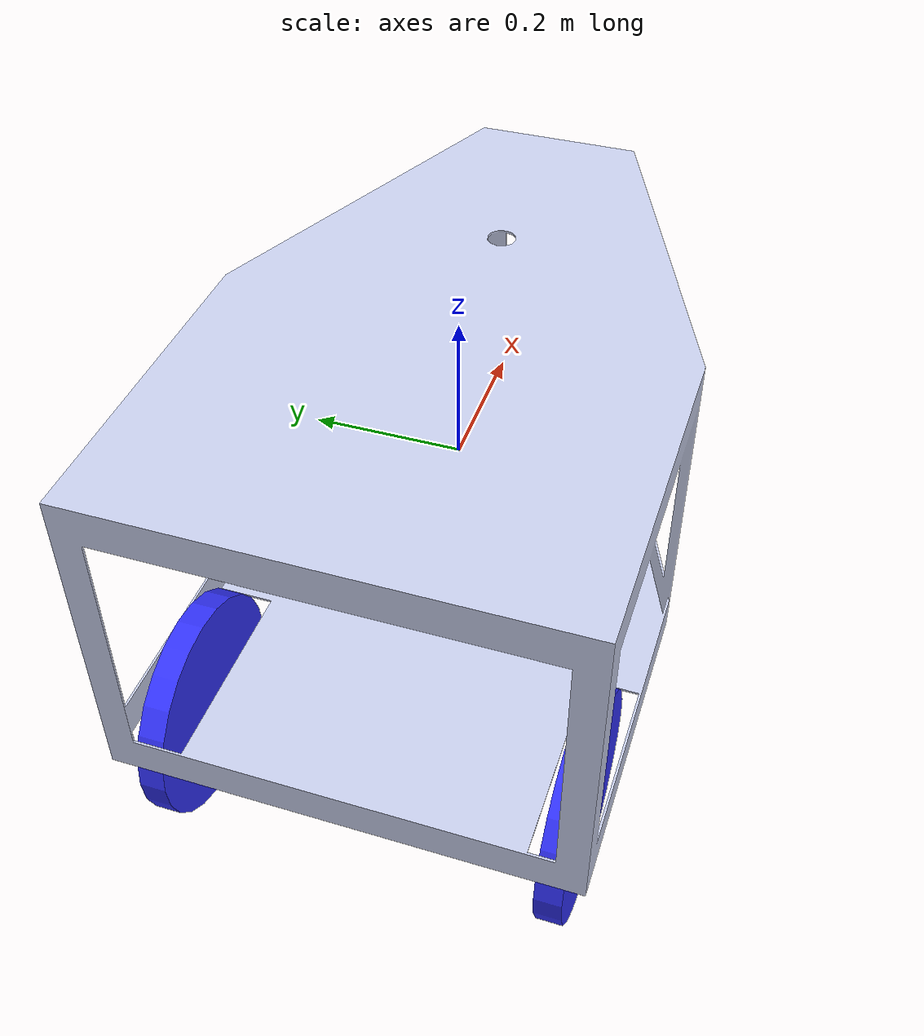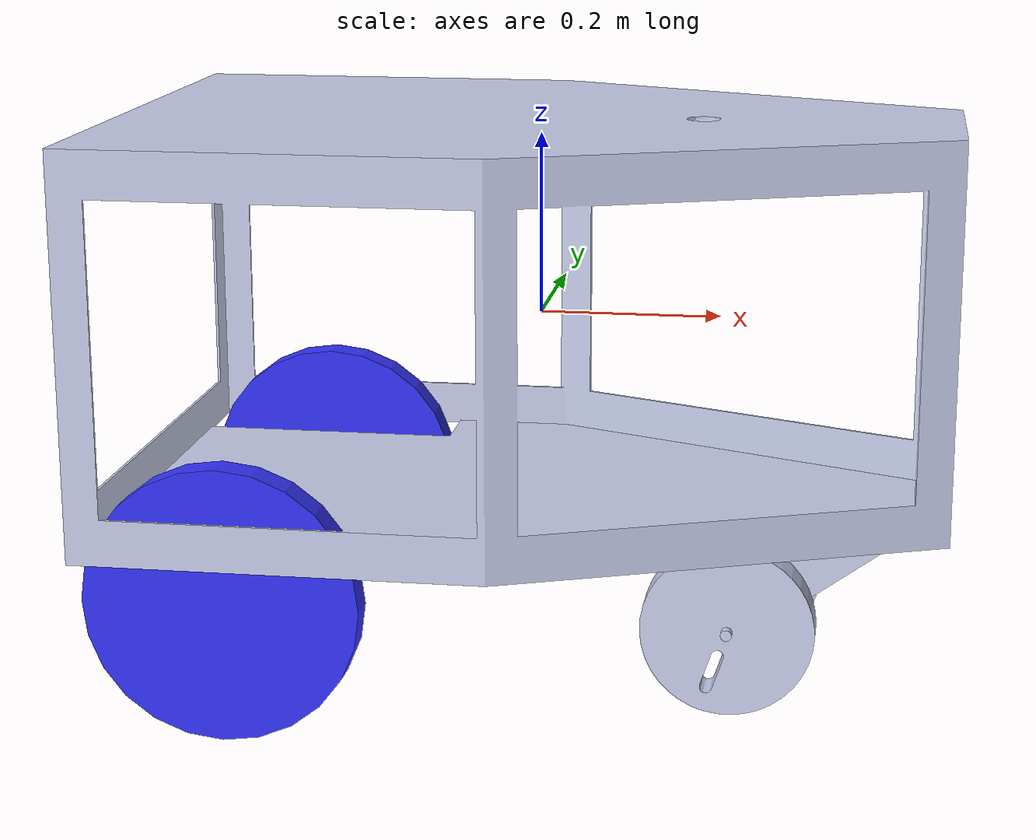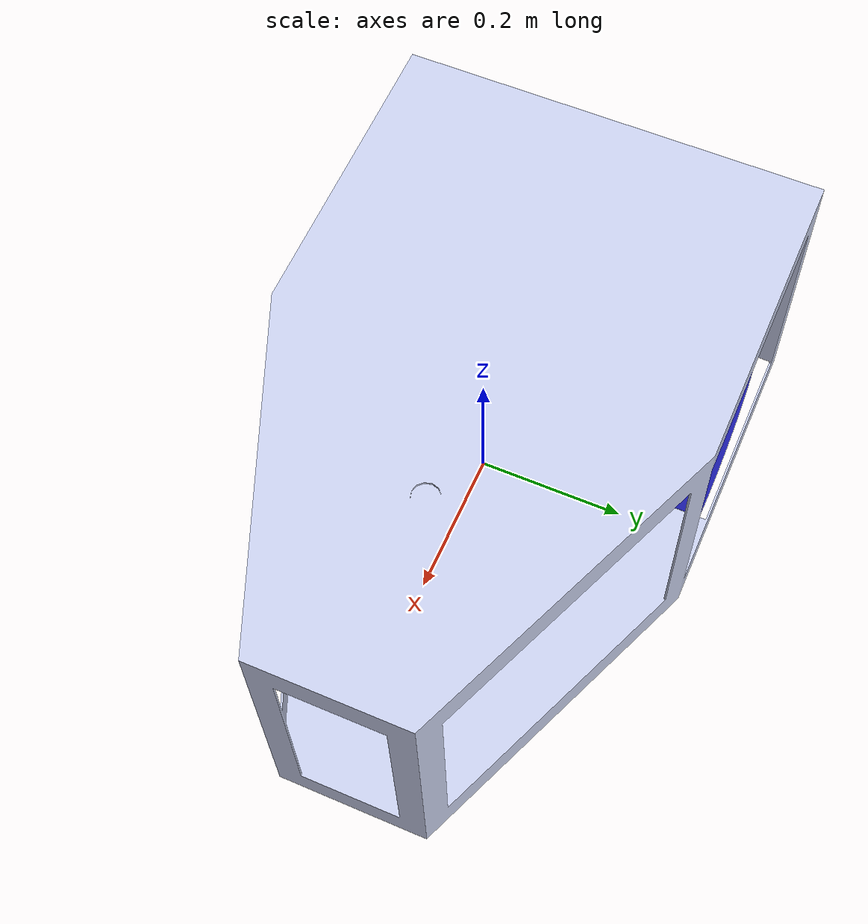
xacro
<?xml version="1.0" encoding="utf-8"?>
<robot xmlns:xacro="http://www.ros.org/wiki/xacro">

  <xacro:include filename="inertial_macros.xacro"/>

  <!-- PROPERTIES -->
  <xacro:property name="wheel_radius" value="0.15"/>
  <xacro:property name="wheel_thickness" value="0.035"/>
  <xacro:property name="wheel_mass" value="0.15"/>
  <xacro:property name="wheel_offset_x" value="-0.30175"/>
  <xacro:property name="wheel_offset_y" value="0.26"/>
  <xacro:property name="wheel_offset_z" value="-0.26683"/>

  <!-- MATERIALS -->
  <material name="white">
      <color rgba="1 1 1 1" />
  </material>

  <material name="orange">
      <color rgba="1 0.3 0.1 1"/>
  </material>

  <material name="blue">
      <color rgba="0.2 0.2 1 1"/>
  </material>

  <material name="black">
      <color rgba="0 0 0 1"/>
  </material>

  <material name="red">
      <color rgba="1 0 0 1"/>
  </material>

  <!-- BASE LINK -->
  <link name="base_link"/>

  <!-- BASE_FOOTPRINT LINK -->
  <joint name="base_footprint_joint" type="fixed">
      <parent link="base_link"/>
      <child link="base_footprint"/>
      <origin xyz="0 0 -0.40" rpy="0 0 0"/>
  </joint>

  <link name="base_footprint"/>

  <!-- CHASSIS -->
  <joint name="dokalman_chassis_joint" type="fixed">
    <parent link="base_link"/>
    <child link="ChassisLink"/>
    <origin xyz="0 0 0" rpy="0 0 0"/>
  </joint>
  <link name="ChassisLink">
    <xacro:inertial_box mass="1.5" x="1.2192" y="0.6858" z="0.8128">
        <origin xyz="0 0 0.042916" rpy="0 0 -1.5708"/>
    </xacro:inertial_box>
    <visual>
      <origin
        xyz="0 0 0"
        rpy="0 0 -1.5708" />

      <geometry>
        <mesh
          filename="file://$(find articubot_one)/meshes/base_link.STL" />
      </geometry>
      <material
        name="">
        <color
          rgba="0.79216 0.81961 0.93333 1" />
      </material>
    </visual>
    <collision>
      <origin
        xyz="0 0 0"
        rpy="0 0 -1.5708" />
      <geometry>
        <mesh
          filename="file://$(find articubot_one)/meshes/base_link.STL" />
      </geometry>
    </collision>
  </link>

  <!-- BACK LEFT WHEEL -->
  <joint name="left_wheel_joint" type="continuous">
      <parent link="base_link"/>
      <child link="left_wheel"/>
      <origin xyz="${wheel_offset_x} ${wheel_offset_y} ${wheel_offset_z}" rpy="-${pi/2} 0 0" />
      <axis xyz="0 0 1"/>
  </joint>

  <link name="left_wheel">
      <visual>
          <geometry>
              <cylinder radius="${wheel_radius}" length="${wheel_thickness}"/>
          </geometry>
          <material name="blue"/>
      </visual>
      <collision>
          <geometry>
              <sphere radius="${wheel_radius}"/>
          </geometry>
      </collision>
      <xacro:inertial_cylinder mass="${wheel_mass}" length="${wheel_thickness}" radius="${wheel_radius}">
          <origin xyz="0 0 0" rpy="0 0 0"/>
      </xacro:inertial_cylinder>
  </link>

  <gazebo reference="left_wheel">
      <material>Gazebo/White</material>
  </gazebo>

  <!-- BACK RIGHT WHEEL -->
  <joint name="right_wheel_joint" type="continuous">
        <parent link="base_link"/>
        <child link="right_wheel"/>
        <origin xyz="${wheel_offset_x}   ${-wheel_offset_y} ${wheel_offset_z}" rpy="${pi/2} 0 0" />
        <axis xyz="0 0 -1"/>
    </joint>

    <link name="right_wheel">
        <visual>
            <geometry>
                <cylinder radius="${wheel_radius}" length="${wheel_thickness}"/>
            </geometry>
            <material name="blue"/>
        </visual>
        <collision>
            <geometry>
                <sphere radius="${wheel_radius}"/>
            </geometry>
        </collision>
        <xacro:inertial_cylinder mass="${wheel_mass}" length="${wheel_thickness}" radius="${wheel_radius}">
            <origin xyz="0 0 0" rpy="0 0 0"/>
        </xacro:inertial_cylinder>
    </link>

    <gazebo reference="right_wheel">
        <material>Gazebo/White</material>
    </gazebo>

  <!-- CASTER -->
  <link name="CasterLink">
    <inertial>
      <origin
        xyz="0 -0.036462 0.035808"
        rpy="0 0 0" />
      <mass
        value="0.25" />
      <inertia
        ixx="0.0013774"
        ixy="0"
        ixz="0"
        iyy="0.0026235"
        iyz="0.0003954"
        izz="0.0020896" />
    </inertial>
    <visual>
      <origin
        xyz="0 0 0"
        rpy="0 0 0" />
      <geometry>
        <mesh
          filename="file://$(find articubot_one)/meshes/CasterLink.STL" />
      </geometry>
      <material
        name="">
        <color
          rgba="0.79216 0.81961 0.93333 1" />
      </material>
    </visual>
    <collision>
      <origin
        xyz="0 0 0"
        rpy="0 0 0" />
      <geometry>
        <mesh
          filename="file://$(find articubot_one)/meshes/CasterLink.STL" />
      </geometry>
    </collision>
  </link>
  <joint name="CasterJoint" type="continuous">
    <origin
      xyz="0.3302 0 -0.21908"
      rpy="1.5708 0 -1.5708" />
    <parent
      link="base_link" />
    <child
      link="CasterLink" />
    <axis
      xyz="0 1 0" />
    <limit
      lower="0"
      upper="3.1415"
      effort="1"
      velocity="1" />
  </joint>

  <!-- FRONT LEFT WHEEL -->
  <link name="FrontLeftWheelLink">
    <inertial>
      <origin
        xyz="-0.024699 0 0"
        rpy="0 0 0" />
      <mass
        value="0.1" />
      <inertia
        ixx="0.0053422"
        ixy="0"
        ixz="0"
        iyy="0.0028032"
        iyz="0"
        izz="0.0028787" />
    </inertial>
    <visual>
      <origin
        xyz="0 0 0"
        rpy="0 0 0" />
      <geometry>
        <mesh
          filename="file://$(find articubot_one)/meshes/FrontLeftWheelLink.STL" />
      </geometry>
      <material
        name="">
        <color
          rgba="0.79216 0.81961 0.93333 1" />
      </material>
    </visual>
    <collision>
      <origin
        xyz="0 0 0"
        rpy="0 0 0" />
      <geometry>
        <mesh
          filename="file://$(find articubot_one)/meshes/FrontLeftWheelLink.STL" />
      </geometry>
    </collision>
  </link>
  <joint name="FrontLeftWheelJoint" type="continuous">
    <origin
      xyz="-0.083806 -0.10265 0.10795"
      rpy="1.1883 0 0" />
    <parent
      link="CasterLink" />
    <child
      link="FrontLeftWheelLink" />
    <axis
      xyz="1 0 0" />
    <limit
      lower="0"
      upper="3.1415"
      effort="1"
      velocity="1" />
  </joint>

  <!-- FRONT RIGHT WHEEL -->
  <link name="FrontRightWheelLink">
    <inertial>
      <origin
        xyz="0.024604 0 0"
        rpy="0 0 0" />
      <mass
        value="0.1" />
      <inertia
        ixx="0.0053422"
        ixy="0"
        ixz="0"
        iyy="0.0028032"
        iyz="0"
        izz="0.0028787" />
    </inertial>
    <visual>
      <origin
        xyz="0 0 0"
        rpy="0 0 0" />
      <geometry>
        <mesh
          filename="file://$(find articubot_one)/meshes/FrontRightWheelLink.STL" />
      </geometry>
      <material
        name="">
        <color
          rgba="0.79216 0.81961 0.93333 1" />
      </material>
    </visual>
    <collision>
      <origin
        xyz="0 0 0"
        rpy="0 0 0" />
      <geometry>
        <mesh
          filename="file://$(find articubot_one)/meshes/FrontRightWheelLink.STL" />
      </geometry>
    </collision>
  </link>
  <joint name="FrontRightWheelJoint" type="continuous">
    <origin
      xyz="0.083901 -0.10265 0.10795"
      rpy="-1.8971 0 0" />
    <parent
      link="CasterLink" />
    <child
      link="FrontRightWheelLink" />
    <axis
      xyz="1 0 0" />
    <limit
      lower="0"
      upper="3.1415"
      effort="1"
      velocity="1" />
  </joint>
</robot>
